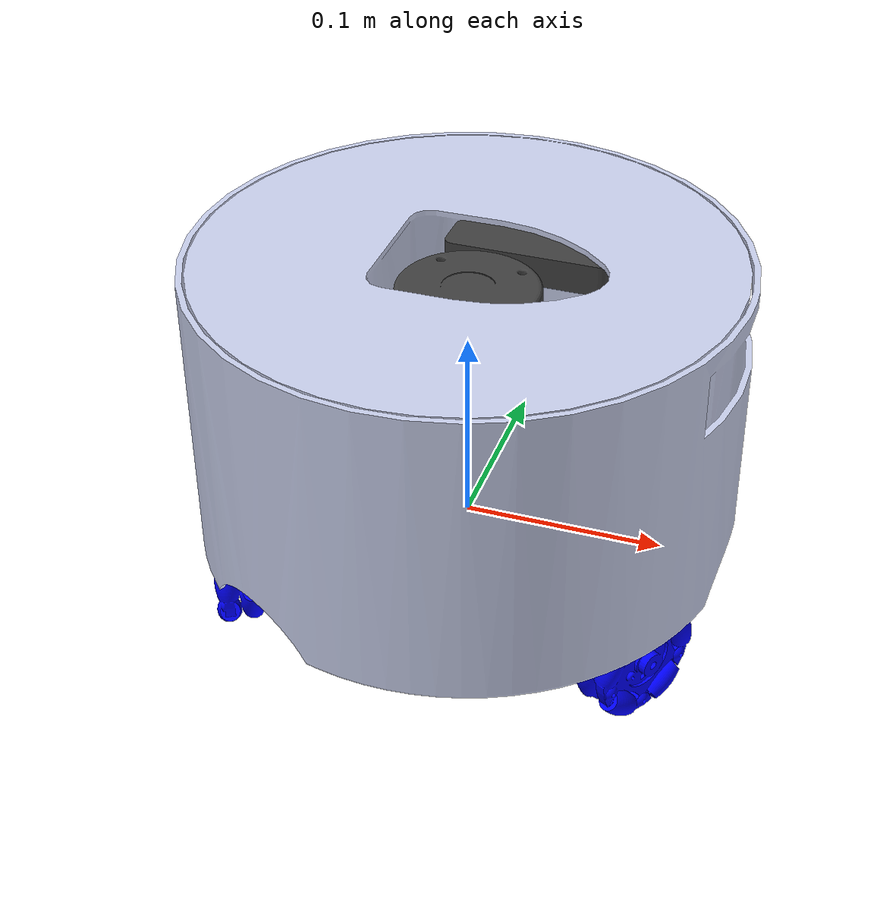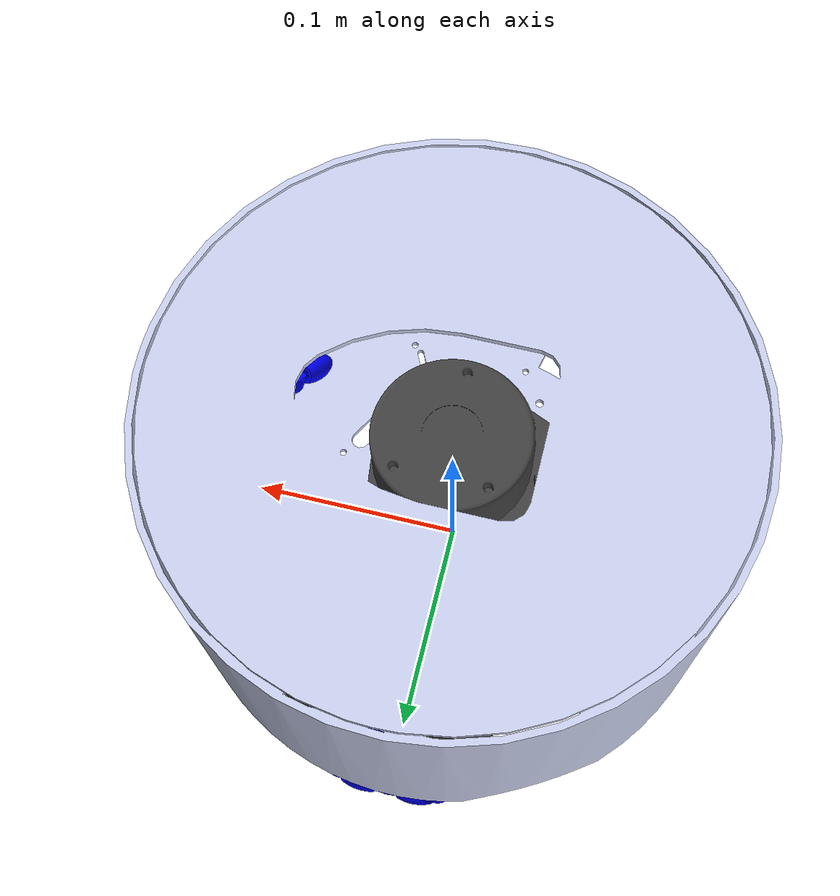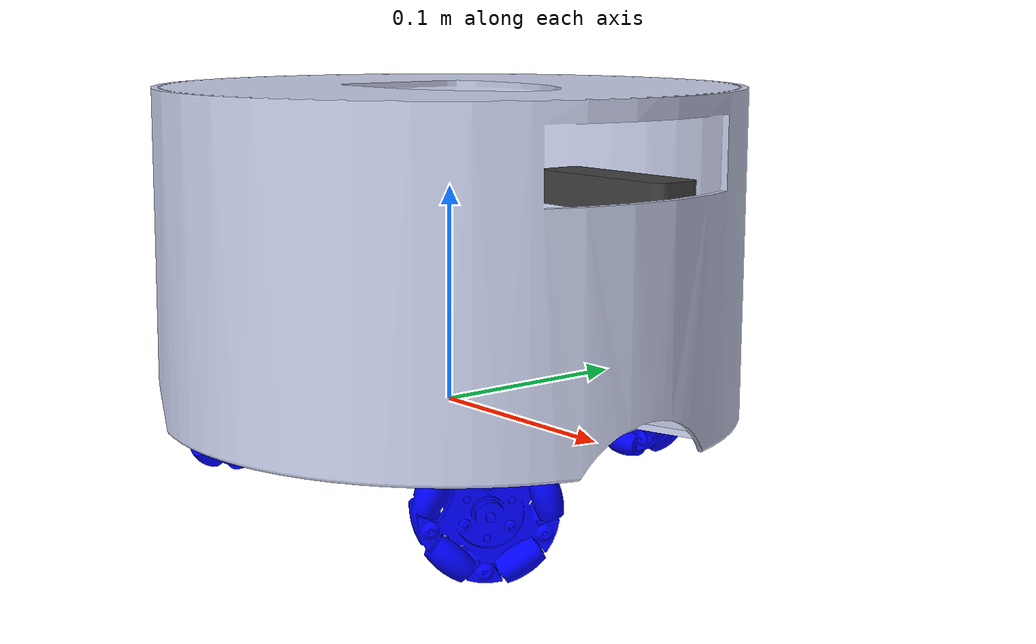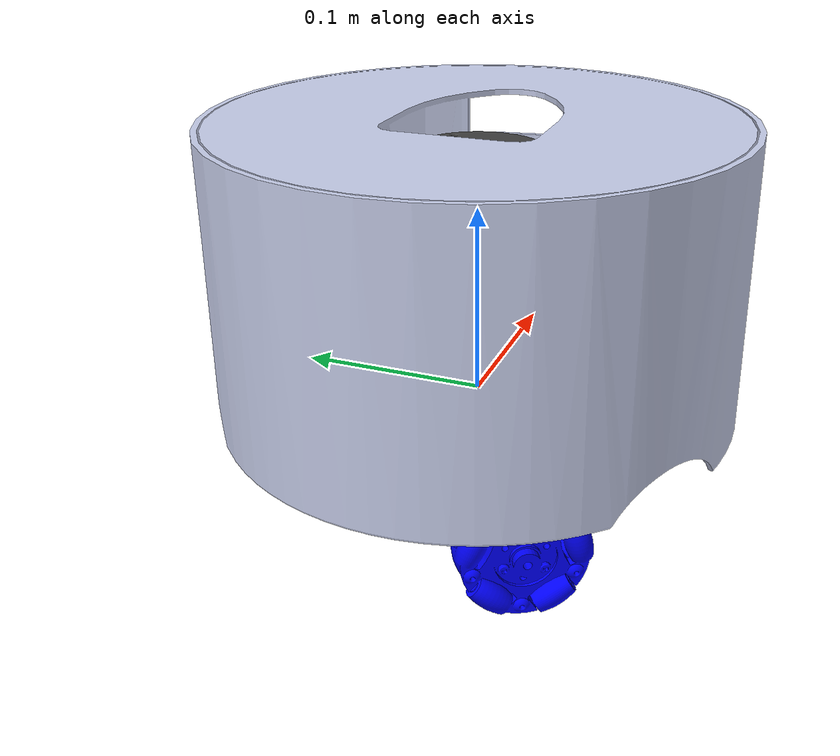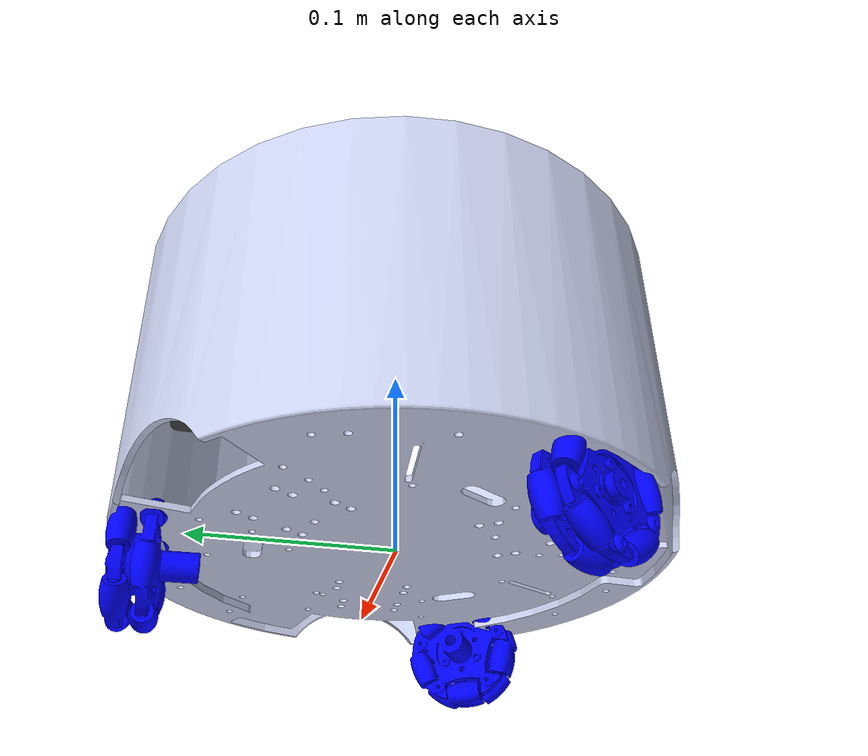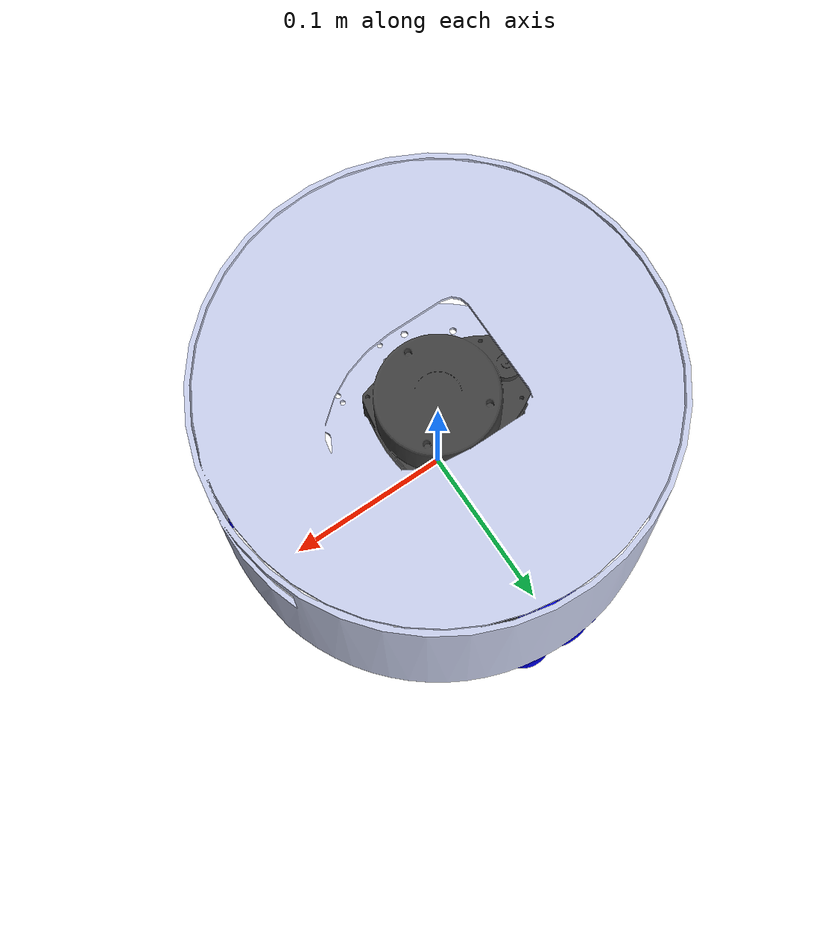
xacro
<?xml version="1.0"?>
<robot xmlns:xacro="http://www.ros.org/wiki/xacro" name="ausrabot">
  <link name="robot_footprint" />
  <joint name="dummy_joint" type="fixed">
      <parent link="robot_footprint"/>
      <child link="base_link"/>
      <origin xyz="0 0 0" rpy="0 0 0"/>
  </joint>
  <link
    name="base_link">
    <inertial>
      <origin
        xyz="0.000132358596962433 0.0107784527153615 0.0455578201137751"
        rpy="0 0 0" />
      <mass
        value="0.545316432015797" />
      <inertia
        ixx="0.00232840648283892"
        ixy="7.82952052633134E-08"
        ixz="-2.35921291442106E-08"
        iyy="0.00246732309842302"
        iyz="-2.45394203695068E-06"
        izz="0.00451259615315152" />
    </inertial>
    <visual>
      <origin
        xyz="0 0 0"
        rpy="0 0 0" />
      <geometry>
        <mesh
          filename="package://ausrabot_description/meshes/base_link.STL" />
      </geometry>
      <material
        name="">
        <color
          rgba="0.792156862745098 0.819607843137255 0.933333333333333 1" />
      </material>
    </visual>
    <collision>
      <origin
        xyz="0 0 0"
        rpy="0 0 0" />
      <geometry>
        <mesh
          filename="package://ausrabot_description/meshes/base_link.STL" />
      </geometry>
    </collision>
  </link>
  <link
    name="wheel_1">
    <inertial>
      <origin
        xyz="-6.11585138939009E-07 2.40519083084118E-06 0.00687917878282576"
        rpy="0 0 0" />
      <mass
        value="0.037694823031467" />
      <inertia
        ixx="3.0972076096957E-06"
        ixy="2.84246335131892E-11"
        ixz="-2.16478688549662E-10"
        iyy="3.09696234654175E-06"
        iyz="8.51072894756962E-10"
        izz="5.34864718246412E-06" />
    </inertial>
    <visual>
      <origin
        xyz="0 0 0"
        rpy="0 0 0" />
      <geometry>
        <mesh
          filename="package://ausrabot_description/meshes/wheel_1.STL" />
      </geometry>
      <material
        name="">
        <color
          rgba="0.0 0.0 1.0 1" />
      </material>
    </visual>
    <collision>
      <origin
        xyz="0 0 0"
        rpy="0 0 0" />
      <geometry>
          <cylinder radius="0.034" length="0.015"/>
      </geometry>
      <surface>
        <friction>
          <ode>
            <mu>1.0</mu>
            <mu2>1.0</mu2>
          </ode>
        </friction>
      </surface>
    </collision>
  </link>
  <joint
    name="joint_1"
    type="continuous">
    <origin
      xyz="0.00131071109492098 0.110453635935089 -0.0161803398874989"
      rpy="1.5707963267949 0 3.12946941504743" />
    <parent
      link="base_link" />
    <child
      link="wheel_1" />
    <axis
      xyz="0 0 1" />
  </joint>
  <link
    name="wheel_2">
    <inertial>
      <origin
        xyz="-2.22775634618061E-06 -1.09358984268573E-06 0.006879178822061"
        rpy="0 0 0" />
      <mass
        value="0.0376948232954181" />
      <inertia
        ixx="3.09702282374251E-06"
        ixy="-3.32677650778434E-11"
        ixz="-7.88279016321689E-10"
        iyy="3.09712667239217E-06"
        iyz="-3.87033927352786E-10"
        izz="5.34862673117426E-06" />
    </inertial>
    <visual>
      <origin
        xyz="0 0 0"
        rpy="0 0 0" />
      <geometry>
        <mesh
          filename="package://ausrabot_description/meshes/wheel_2.STL" />
      </geometry>
      <material
        name="">
        <color
          rgba="0.0 0.0 1.0 1" />
      </material>
    </visual>
    <collision>
      <origin
        xyz="0 0 0"
        rpy="0 0 0" />
      <geometry>
          <cylinder radius="0.034" length="0.015"/>
      </geometry>
      <surface>
        <friction>
          <ode>
            <mu>1.0</mu>
            <mu2>1.0</mu2>
          </ode>
        </friction>
      </surface>
    </collision>
  </link>
  <joint
    name="joint_2"
    type="continuous">
    <origin
      xyz="-0.0963609169452294 -0.0540793874249231 -0.016180339887499"
      rpy="1.5707963267949 0 -1.05932078973896" />
    <parent
      link="base_link" />
    <child
      link="wheel_2" />
    <axis
      xyz="0 0 1" />
  </joint>
  <link
    name="wheel_3">
    <inertial>
      <origin
        xyz="2.39002105834052E-06 6.6831361357142E-07 0.00687917877739805"
        rpy="0 0 0" />
      <mass
        value="0.0376948233023577" />
      <inertia
        ixx="3.09710830531407E-06"
        ixy="8.8846112421192E-12"
        ixz="8.45711274919436E-10"
        iyy="3.0971477806935E-06"
        iyz="2.36549362165485E-10"
        izz="5.34873332719162E-06" />
    </inertial>
    <visual>
      <origin
        xyz="0 0 0"
        rpy="0 0 0" />
      <geometry>
        <mesh
          filename="package://ausrabot_description/meshes/wheel_3.STL" />
      </geometry>
      <material
        name="">
        <color
          rgba="0.0 0.0 1.0 1" />
      </material>
    </visual>
    <collision>
      <origin
        xyz="0 0 0"
        rpy="0 0 0" />
      <geometry>
          <cylinder radius="0.034" length="0.015"/>
      </geometry>
      <surface>
        <friction>
          <ode>
            <mu>1.0</mu>
            <mu2>1.0</mu2>
          </ode>
        </friction>
      </surface>
    </collision>
  </link>
    <joint
    name="joint_3"
    type="continuous">
    <origin
      xyz="0.0949646750660746 -0.0563989868566714 -0.016180339887499"
      rpy="1.5707963267949 0 1.03507431265423" />
    <parent
      link="base_link" />
    <child
      link="wheel_3" />
    <axis
      xyz="0 0 1" />
  </joint>
  <link
    name="lidar">
    <inertial>
      <origin
        xyz="-0.000173277491394453 -0.00676662791697095 0.00557928889827741"
        rpy="0 0 0" />
      <mass
        value="0.171177012505295" />
      <inertia
        ixx="0.000124253941113825"
        ixy="-4.38664000869312E-07"
        ixz="-6.40588163757229E-07"
        iyy="7.95393375273759E-05"
        iyz="-2.02744127539845E-05"
        izz="0.000141905084169328" />
    </inertial>
    <visual>
      <origin
        xyz="0 0 0"
        rpy="0 0 0" />
      <geometry>
        <mesh
          filename="package://ausrabot_description/meshes/lidar.STL" />
      </geometry>
      <material
        name="">
        <color
          rgba="0.250980392156863 0.250980392156863 0.250980392156863 1" />
      </material>
    </visual>
    <collision>
      <origin
        xyz="0 0 0"
        rpy="0 0 0" />
      <geometry>
        <mesh
          filename="package://ausrabot_description/meshes/lidar.STL" />
      </geometry>
    </collision>
  </link>
  <joint
    name="lidar_joint"
    type="fixed">
    <origin
      xyz="-2.85102614102555E-05 0 0.130598095199185"
      rpy="0 0 3.14159265358979" />
    <parent
      link="base_link" />
    <child
      link="lidar" />
    <axis
      xyz="0 0 0" />
  </joint>
  <link
    name="oak_camera">
    <inertial>
      <origin
        xyz="2.77555756156289E-17 2.38524477946811E-18 -0.00860000000000001"
        rpy="0 0 0" />
      <mass
        value="0.0417182941210436" />
      <inertia
        ixx="2.88248605870479E-05"
        ixy="-7.46277402243113E-19"
        ixz="3.67148828118008E-22"
        iyy="3.55432167309084E-06"
        iyz="2.8124140826834E-22"
        izz="3.03221922380105E-05" />
    </inertial>
    <visual>
      <origin
        xyz="0 0 0"
        rpy="0 0 0" />
      <geometry>
        <mesh
          filename="package://ausrabot_description/meshes/oak_camera.STL" />
      </geometry>
      <material
        name="">
        <color
          rgba="0.250980392156863 0.250980392156863 0.250980392156863 1" />
      </material>
    </visual>
    <collision>
      <origin
        xyz="0 0 0"
        rpy="0 0 0" />
      <geometry>
        <mesh
          filename="package://ausrabot_description/meshes/oak_camera.STL" />
      </geometry>
    </collision>
  </link>
  <joint
    name="oak_joint"
    type="fixed">
    <origin
      xyz="0.000808669644363073 0.103689225067774 0.098888095199185"
      rpy="1.55867308825253 -1.5707963267949 0" />
    <parent
      link="base_link" />
    <child
      link="oak_camera" />
    <axis
      xyz="0 0 0" />
  </joint>

  <link name="camera_link_optical"/>

  <joint name="camera_optical_joint" type="fixed">
    <parent link="oak_camera"/>
    <child link="camera_link_optical"/>
    <origin xyz="0 0 -2" rpy="0 3.14 0"/>
  </joint>

  <link name="imu_link">
    <visual>
      <geometry>
        <box size="0.0001 0.0001 0.0001"/>
      </geometry>
      <material name="">
        <color rgba="1.0 0.0 0.0 1"/> </material>
    </visual>
    <collision>
      <geometry>
        <box size="0.0001 0.0001 0.0001"/>
      </geometry>
    </collision>
    <inertial>
      <mass value="0.01"/>
      <inertia ixx="0.0001" ixy="0" ixz="0" iyy="0.0001" iyz="0" izz="0.0001"/>
    </inertial>
  </link>

  <joint name="imu_joint" type="fixed">
    <parent link="base_link"/>
    <child link="imu_link"/>
    <origin xyz="0 0 0" rpy="0 0 0"/>
  </joint>

  <ros2_control name="GazeboSystem" type="system">
    <hardware>
      <plugin>gz_ros2_control/GazeboSimSystem</plugin>
    </hardware>
    <joint name="joint_1">
      <command_interface name="velocity"/>
      <state_interface name="velocity"/>
      <state_interface name="position"/>
    </joint>
    <joint name="joint_2">
      <command_interface name="velocity"/>
      <state_interface name="velocity"/>
      <state_interface name="position"/>
    </joint>
    <joint name="joint_3">
      <command_interface name="velocity"/>
      <state_interface name="velocity"/>
      <state_interface name="position"/>
    </joint>
  </ros2_control>

  <gazebo>
    <plugin
      filename="gz-sim-sensors-system"
      name="gz::sim::systems::Sensors">
      <render_engine>ogre2</render_engine>
    </plugin>

    <plugin filename="gz_ros2_control-system" name="gz_ros2_control::GazeboSimROS2ControlPlugin">
      <parameters>$(find ausrabot_description)/config/ausrabot_controller.yaml</parameters>
      <robot_param>robot_description</robot_param>
      <robot_param_node>robot_state_publisher</robot_param_node>
    </plugin>
  </gazebo>

  <!-- OMNI WHEEL FRICTION CORRECTION -->
  <!-- mu1 = Forward Friction (High), mu2 = Sideways Friction (Low/Slide) -->

  <gazebo reference="wheel_1">
    <mu1>1.0</mu1>
    <mu2>0.001</mu2>
    <fdir1>1 0 0</fdir1>
  </gazebo>

  <gazebo reference="wheel_2">
    <mu1>1.0</mu1>
    <mu2>0.001</mu2>
    <fdir1>1 0 0</fdir1>
  </gazebo>

  <gazebo reference="wheel_3">
    <mu1>1.0</mu1>
    <mu2>0.001</mu2>
    <fdir1>1 0 0</fdir1>
  </gazebo>

  <gazebo reference="lidar">
    <sensor name="lidar" type="gpu_lidar">
      <pose relative_to='lidar'>0 0 0 0 0 0</pose>
      <topic>scan</topic>
      <update_rate>10</update_rate>
      <ray>
        <scan>
          <horizontal>
            <samples>801</samples>
            <resolution>1</resolution>
            <min_angle>-3.14159</min_angle>
            <max_angle>3.14159</max_angle>
          </horizontal>
          <vertical>
            <samples>1</samples>
            <resolution>1</resolution>
            <min_angle>0</min_angle>
            <max_angle>0</max_angle>
          </vertical>
        </scan>
        <range>
          <min>0.15</min>
          <max>6.0</max>
          <resolution>0.001</resolution>
        </range>
      </ray>
      <always_on>1</always_on>
      <visualize>true</visualize>
      <gz_frame_id>lidar</gz_frame_id> </sensor>
  </gazebo>

  <gazebo reference="imu_link">
    <sensor name="imu_sensor" type="imu">
      <always_on>true</always_on>
      <update_rate>100</update_rate>
      <visualize>true</visualize>
      <topic>imu</topic>
      <plugin filename="libignition-gazebo-imu-system.so" name="ignition::gazebo::systems::Imu">
      </plugin>
      <pose>0 0 0 0 0 0</pose>
      <gz_frame_id>imu_link</gz_frame_id>
    </sensor>
  </gazebo>

  <gazebo reference="oak_camera">
    <sensor name="oak_d_lite_rgb" type="camera">
      <pose>0 0 0 0 0 0</pose>

      <visualize>true</visualize>

      <update_rate>30.0</update_rate>

      <topic>camera/image_raw</topic>

      <gz_frame_id>camera_link_optical</gz_frame_id>

      <camera>
        <horizontal_fov>1.20428</horizontal_fov>

        <image>
          <width>1920</width>
          <height>1080</height>
          <format>R8G8B8</format>
        </image>

        <clip>
          <near>0.08</near>
          <far>100.0</far>
        </clip>

        <noise>
          <type>gaussian</type>
          <mean>0.0</mean>
          <stddev>0.007</stddev>
        </noise>
      </camera>
    </sensor>
  </gazebo>
</robot>
